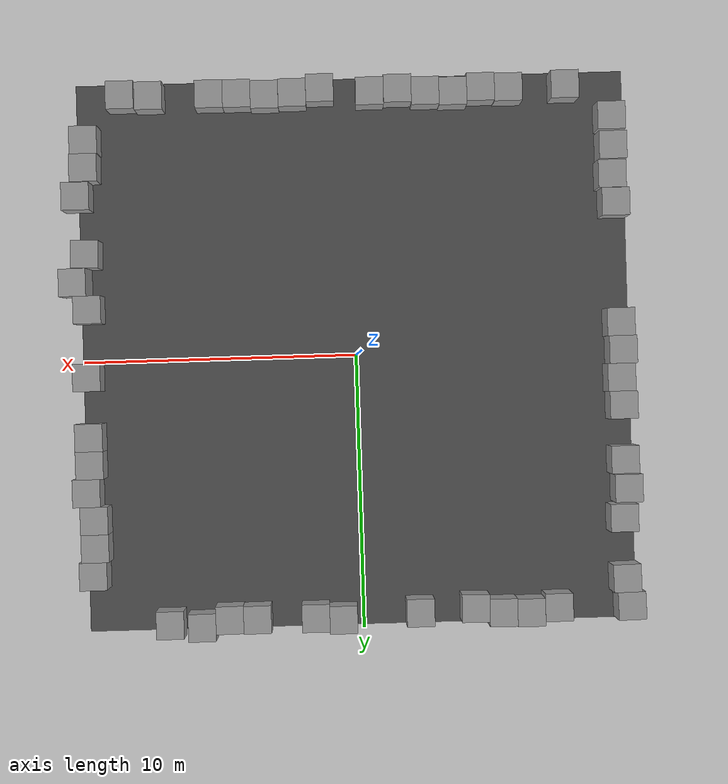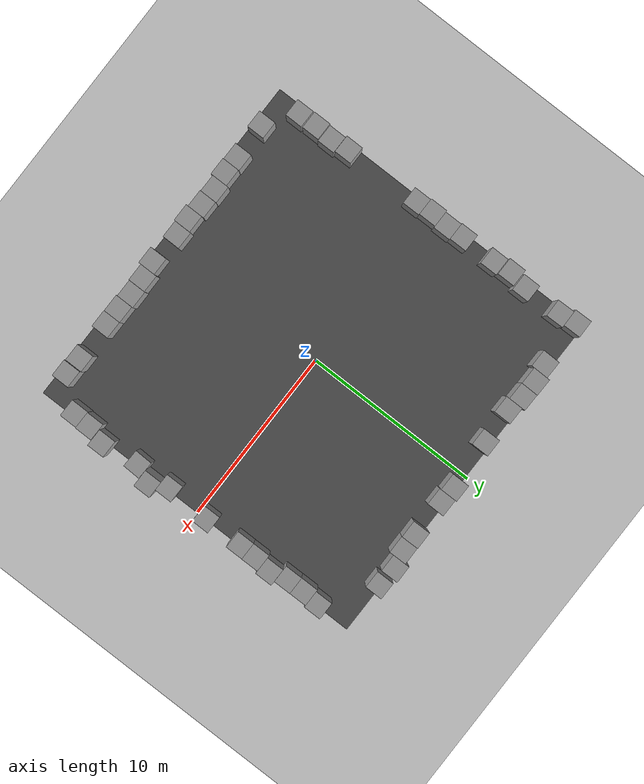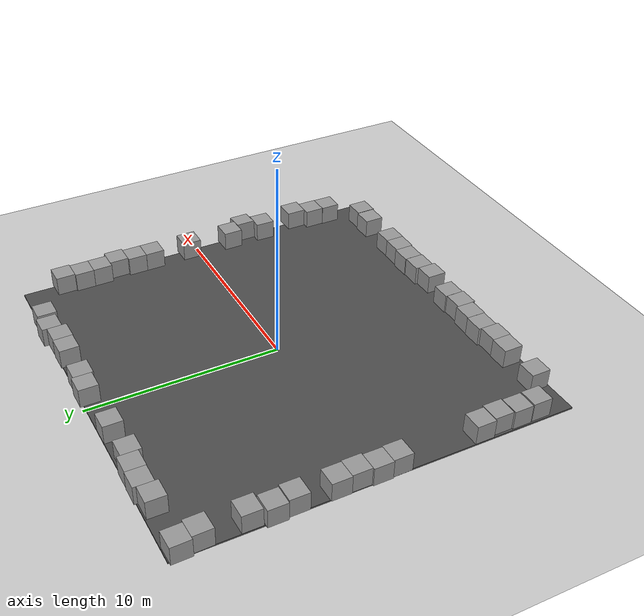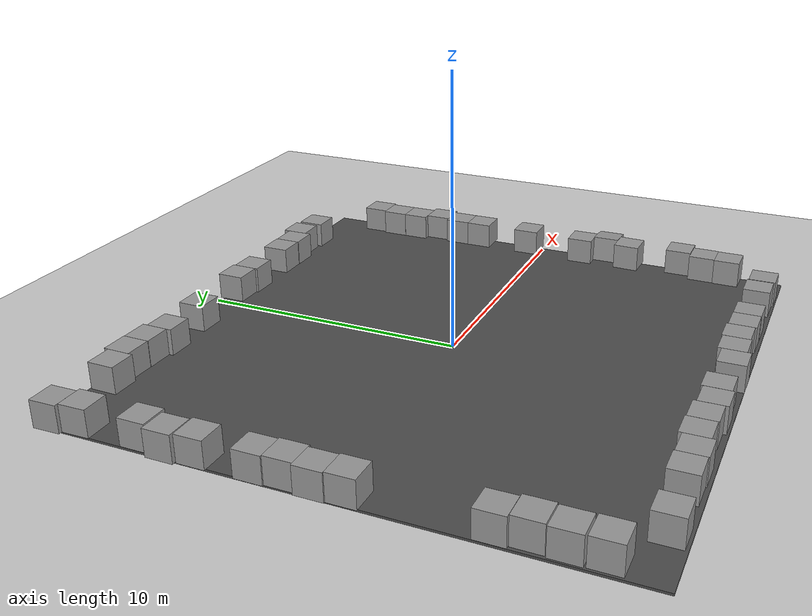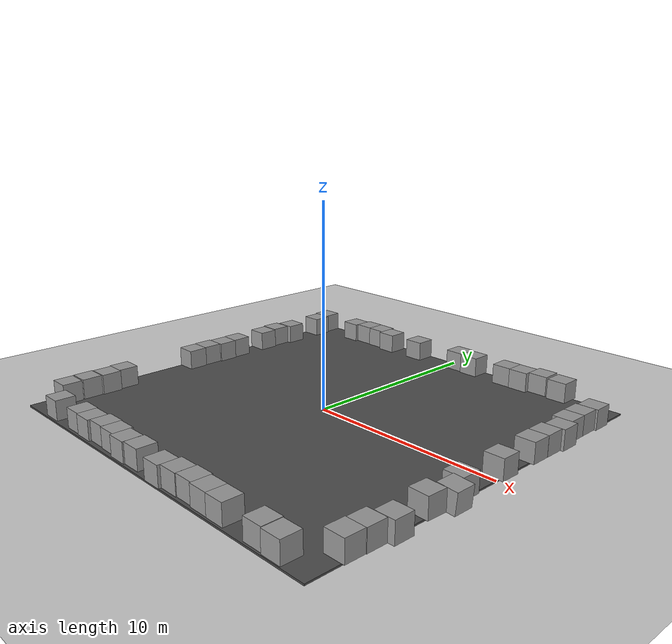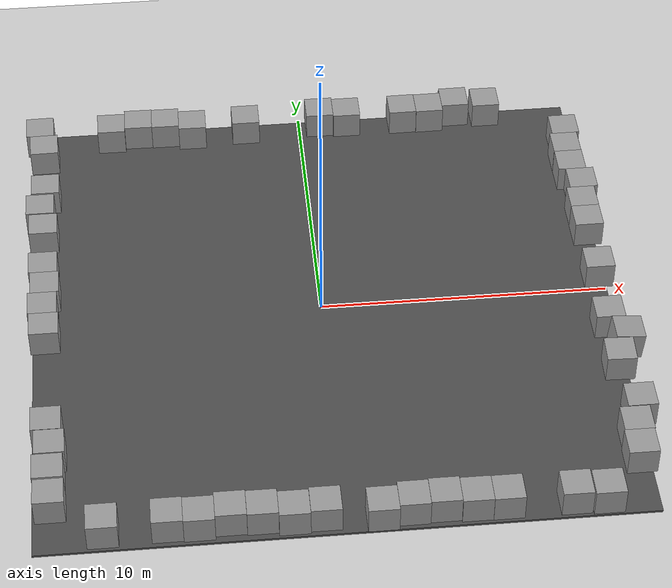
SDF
<sdf version="1.6">
 <world name="default">
  <light name="sun" type="directional">
   <pose>0 0 10 0 -0 0</pose>
   <diffuse>0.8 0.8 0.8 1</diffuse>
   <specular>0.1 0.1 0.1 1</specular>
   <attenuation>
    <range>1000</range>
    <constant>0.9</constant>
    <linear>0.01</linear>
    <quadratic>0.001</quadratic>
   </attenuation>
   <direction>-0.5 0.5 -1</direction>
  </light>
  <model name="ground_plane">
   <static>1</static>
   <link name="link">
    <collision name="collision">
     <geometry><plane><normal>0 0 1</normal><size>100 100</size></plane></geometry>
     <surface><friction><ode><mu>100</mu><mu2>50</mu2></ode></friction></surface>
    </collision>
    <visual name="visual">
     <cast_shadows>0</cast_shadows>
     <geometry><plane><normal>0 0 1</normal><size>100 100</size></plane></geometry>
     <material>
      <script><uri>file://media/materials/scripts/gazebo.material</uri><name>Gazebo/Grey</name></script>
     </material>
    </visual>
   </link>
  </model>
  <gravity>0 0 -9.8</gravity>
  <magnetic_field>6e-06 2.3e-05 -4.2e-05</magnetic_field>
  <atmosphere type="adiabatic"/>
  <physics name="default_physics" default="0" type="ode">
   <max_step_size>0.001</max_step_size>
   <real_time_factor>1</real_time_factor>
   <real_time_update_rate>1000</real_time_update_rate>
  </physics>
  <scene><ambient>0.4 0.4 0.4 1</ambient><background>0.7 0.7 0.7 1</background><shadows>1</shadows></scene>
  <spherical_coordinates>
   <surface_model>EARTH_WGS84</surface_model>
   <latitude_deg>0</latitude_deg>
   <longitude_deg>0</longitude_deg>
   <elevation>0</elevation>
   <heading_deg>0</heading_deg>
  </spherical_coordinates>
  <model name="asphalt_plane">
   <static>1</static>
   <link name="link">
    <collision name="collision"><geometry><box><size>20 20 0.1</size></box></geometry></collision>
    <visual name="visual">
     <cast_shadows>0</cast_shadows>
     <geometry><box><size>20 20 0.1</size></box></geometry>
     <material>
      <script>
       <uri>model://asphalt_plane/materials/scripts</uri>
       <uri>model://asphalt_plane/materials/textures</uri>
       <name>vrc/asphalt</name>
      </script>
     </material>
    </visual>
   </link>
   <pose>0.023839 -0.146036 0 0 -0 0</pose>
  </model>
  <model name="unit_box_0">
   <pose>-9.39336 -8.37789 0.55 0 -0 5e-05</pose>
   <link name="link">
    <inertial>
     <mass>1</mass>
     <inertia>
      <ixx>0.166667</ixx>
      <ixy>0</ixy>
      <ixz>0</ixz>
      <iyy>0.166667</iyy>
      <iyz>0</iyz>
      <izz>0.166667</izz>
     </inertia>
    </inertial>
    <collision name="collision"><geometry><box><size>1 1 1</size></box></geometry></collision>
    <visual name="visual">
     <geometry><box><size>1 1 1</size></box></geometry>
     <material>
      <script><name>Gazebo/Grey</name><uri>file://media/materials/scripts/gazebo.material</uri></script>
     </material>
    </visual>
   </link>
  </model>
  <model name="unit_box_1">
   <pose>-9.41766 -7.3155 0.55 0 -0 5e-05</pose>
   <link name="link">
    <inertial>
     <mass>1</mass>
     <inertia>
      <ixx>0.166667</ixx>
      <ixy>0</ixy>
      <ixz>0</ixz>
      <iyy>0.166667</iyy>
      <iyz>0</iyz>
      <izz>0.166667</izz>
     </inertia>
    </inertial>
    <collision name="collision"><geometry><box><size>1 1 1</size></box></geometry></collision>
    <visual name="visual">
     <geometry><box><size>1 1 1</size></box></geometry>
     <material>
      <script><name>Gazebo/Grey</name><uri>file://media/materials/scripts/gazebo.material</uri></script>
     </material>
    </visual>
   </link>
  </model>
  <model name="unit_box_1_clone">
   <pose>-9.36201 -6.27951 0.549998 -5e-06 0 0.000116</pose>
   <link name="link">
    <inertial>
     <mass>1</mass>
     <inertia>
      <ixx>0.166667</ixx>
      <ixy>0</ixy>
      <ixz>0</ixz>
      <iyy>0.166667</iyy>
      <iyz>0</iyz>
      <izz>0.166667</izz>
     </inertia>
    </inertial>
    <collision name="collision"><geometry><box><size>1 1 1</size></box></geometry></collision>
    <visual name="visual">
     <geometry><box><size>1 1 1</size></box></geometry>
     <material>
      <script><name>Gazebo/Grey</name><uri>file://media/materials/scripts/gazebo.material</uri></script>
     </material>
    </visual>
   </link>
  </model>
  <model name="unit_box_1_clone_peter">
   <pose>-0 0 0.55 -0 -0 -0</pose>
   <link name="link">
    <inertial>
     <mass>1</mass>
     <inertia>
      <ixx>0.166667</ixx>
      <ixy>0</ixy>
      <ixz>0</ixz>
      <iyy>0.166667</iyy>
      <iyz>0</iyz>
      <izz>0.166667</izz>
     </inertia>
    </inertial>
    <collision name="collision"><geometry><box><size>0.1 0.1 1</size></box></geometry></collision>
    <visual name="visual">
     <geometry><box><size>0.1 0.1 1</size></box></geometry>
     <material>
      <script><name>Gazebo/Grey</name><uri>file://media/materials/scripts/gazebo.material</uri></script>
     </material>
    </visual>
   </link>
   <plugin name="push_animate" filename="libanimated_box.so"/>
  </model>
  <model name="unit_box_1_clone_0">
   <pose>-9.46656 -5.26997 0.549998 -5e-06 -0 0.000115</pose>
   <link name="link">
    <inertial>
     <mass>1</mass>
     <inertia>
      <ixx>0.166667</ixx>
      <ixy>0</ixy>
      <ixz>0</ixz>
      <iyy>0.166667</iyy>
      <iyz>0</iyz>
      <izz>0.166667</izz>
     </inertia>
    </inertial>
    <collision name="collision"><geometry><box><size>1 1 1</size></box></geometry></collision>
    <visual name="visual">
     <geometry><box><size>1 1 1</size></box></geometry>
     <material>
      <script><name>Gazebo/Grey</name><uri>file://media/materials/scripts/gazebo.material</uri></script>
     </material>
    </visual>
   </link>
  </model>
  <model name="unit_box_1_clone_7">
   <pose>-0.705032 -9.49283 0.549998 -1e-06 4e-06 -0.003031</pose>
   <link name="link">
    <inertial>
     <mass>1</mass>
     <inertia>
      <ixx>0.166667</ixx>
      <ixy>0</ixy>
      <ixz>0</ixz>
      <iyy>0.166667</iyy>
      <iyz>0</iyz>
      <izz>0.166667</izz>
     </inertia>
    </inertial>
    <collision name="collision"><geometry><box><size>1 1 1</size></box></geometry></collision>
    <visual name="visual">
     <geometry><box><size>1 1 1</size></box></geometry>
     <material>
      <script><name>Gazebo/Grey</name><uri>file://media/materials/scripts/gazebo.material</uri></script>
     </material>
    </visual>
   </link>
  </model>
  <model name="unit_box_1_clone_8">
   <pose>-1.70734 -9.56117 0.549998 -5e-06 0 0.000267</pose>
   <link name="link">
    <inertial>
     <mass>1</mass>
     <inertia>
      <ixx>0.166667</ixx>
      <ixy>0</ixy>
      <ixz>0</ixz>
      <iyy>0.166667</iyy>
      <iyz>0</iyz>
      <izz>0.166667</izz>
     </inertia>
    </inertial>
    <collision name="collision"><geometry><box><size>1 1 1</size></box></geometry></collision>
    <visual name="visual">
     <geometry><box><size>1 1 1</size></box></geometry>
     <material>
      <script><name>Gazebo/Grey</name><uri>file://media/materials/scripts/gazebo.material</uri></script>
     </material>
    </visual>
   </link>
  </model>
  <model name="unit_box_1_clone_9">
   <pose>-2.7076 -9.44656 0.549998 -5e-06 -0 0.000316</pose>
   <link name="link">
    <inertial>
     <mass>1</mass>
     <inertia>
      <ixx>0.166667</ixx>
      <ixy>0</ixy>
      <ixz>0</ixz>
      <iyy>0.166667</iyy>
      <iyz>0</iyz>
      <izz>0.166667</izz>
     </inertia>
    </inertial>
    <collision name="collision"><geometry><box><size>1 1 1</size></box></geometry></collision>
    <visual name="visual">
     <geometry><box><size>1 1 1</size></box></geometry>
     <material>
      <script><name>Gazebo/Grey</name><uri>file://media/materials/scripts/gazebo.material</uri></script>
     </material>
    </visual>
   </link>
  </model>
  <model name="unit_box_1_clone_10">
   <pose>-3.70791 -9.40958 0.549998 -5e-06 -0 0.000256</pose>
   <link name="link">
    <inertial>
     <mass>1</mass>
     <inertia>
      <ixx>0.166667</ixx>
      <ixy>0</ixy>
      <ixz>0</ixz>
      <iyy>0.166667</iyy>
      <iyz>0</iyz>
      <izz>0.166667</izz>
     </inertia>
    </inertial>
    <collision name="collision"><geometry><box><size>1 1 1</size></box></geometry></collision>
    <visual name="visual">
     <geometry><box><size>1 1 1</size></box></geometry>
     <material>
      <script><name>Gazebo/Grey</name><uri>file://media/materials/scripts/gazebo.material</uri></script>
     </material>
    </visual>
   </link>
  </model>
  <model name="unit_box_1_clone_11">
   <pose>-4.70792 -9.53279 0.549996 9e-06 -0 0.000313</pose>
   <link name="link">
    <inertial>
     <mass>1</mass>
     <inertia>
      <ixx>0.166667</ixx>
      <ixy>0</ixy>
      <ixz>0</ixz>
      <iyy>0.166667</iyy>
      <iyz>0</iyz>
      <izz>0.166667</izz>
     </inertia>
    </inertial>
    <collision name="collision"><geometry><box><size>1 1 1</size></box></geometry></collision>
    <visual name="visual">
     <geometry><box><size>1 1 1</size></box></geometry>
     <material>
      <script><name>Gazebo/Grey</name><uri>file://media/materials/scripts/gazebo.material</uri></script>
     </material>
    </visual>
   </link>
  </model>
  <model name="unit_box_1_clone_12">
   <pose>-5.70794 -9.49711 0.549996 9e-06 -0 0.000324</pose>
   <link name="link">
    <inertial>
     <mass>1</mass>
     <inertia>
      <ixx>0.166667</ixx>
      <ixy>0</ixy>
      <ixz>0</ixz>
      <iyy>0.166667</iyy>
      <iyz>0</iyz>
      <izz>0.166667</izz>
     </inertia>
    </inertial>
    <collision name="collision"><geometry><box><size>1 1 1</size></box></geometry></collision>
    <visual name="visual">
     <geometry><box><size>1 1 1</size></box></geometry>
     <material>
      <script><name>Gazebo/Grey</name><uri>file://media/materials/scripts/gazebo.material</uri></script>
     </material>
    </visual>
   </link>
  </model>
  <model name="unit_box_1_clone_13">
   <pose>-7.74686 -9.54879 0.549998 -5e-06 -0 0.000106</pose>
   <link name="link">
    <inertial>
     <mass>1</mass>
     <inertia>
      <ixx>0.166667</ixx>
      <ixy>0</ixy>
      <ixz>0</ixz>
      <iyy>0.166667</iyy>
      <iyz>0</iyz>
      <izz>0.166667</izz>
     </inertia>
    </inertial>
    <collision name="collision"><geometry><box><size>1 1 1</size></box></geometry></collision>
    <visual name="visual">
     <geometry><box><size>1 1 1</size></box></geometry>
     <material>
      <script><name>Gazebo/Grey</name><uri>file://media/materials/scripts/gazebo.material</uri></script>
     </material>
    </visual>
   </link>
  </model>
  <model name="unit_box_1_clone_14">
   <pose>1.09209 -9.65495 0.55 0 -0 0.001261</pose>
   <link name="link">
    <inertial>
     <mass>1</mass>
     <inertia>
      <ixx>0.166667</ixx>
      <ixy>0</ixy>
      <ixz>0</ixz>
      <iyy>0.166667</iyy>
      <iyz>0</iyz>
      <izz>0.166667</izz>
     </inertia>
    </inertial>
    <collision name="collision"><geometry><box><size>1 1 1</size></box></geometry></collision>
    <visual name="visual">
     <geometry><box><size>1 1 1</size></box></geometry>
     <material>
      <script><name>Gazebo/Grey</name><uri>file://media/materials/scripts/gazebo.material</uri></script>
     </material>
    </visual>
   </link>
  </model>
  <model name="unit_box_1_clone_15">
   <pose>2.0921 -9.51203 0.549998 -5e-06 0 0.000968</pose>
   <link name="link">
    <inertial>
     <mass>1</mass>
     <inertia>
      <ixx>0.166667</ixx>
      <ixy>0</ixy>
      <ixz>0</ixz>
      <iyy>0.166667</iyy>
      <iyz>0</iyz>
      <izz>0.166667</izz>
     </inertia>
    </inertial>
    <collision name="collision"><geometry><box><size>1 1 1</size></box></geometry></collision>
    <visual name="visual">
     <geometry><box><size>1 1 1</size></box></geometry>
     <material>
      <script><name>Gazebo/Grey</name><uri>file://media/materials/scripts/gazebo.material</uri></script>
     </material>
    </visual>
   </link>
  </model>
  <model name="unit_box_1_clone_16">
   <pose>3.09304 -9.47288 0.549998 -5e-06 0 -0.000358</pose>
   <link name="link">
    <inertial>
     <mass>1</mass>
     <inertia>
      <ixx>0.166667</ixx>
      <ixy>0</ixy>
      <ixz>0</ixz>
      <iyy>0.166667</iyy>
      <iyz>0</iyz>
      <izz>0.166667</izz>
     </inertia>
    </inertial>
    <collision name="collision"><geometry><box><size>1 1 1</size></box></geometry></collision>
    <visual name="visual">
     <geometry><box><size>1 1 1</size></box></geometry>
     <material>
      <script><name>Gazebo/Grey</name><uri>file://media/materials/scripts/gazebo.material</uri></script>
     </material>
    </visual>
   </link>
  </model>
  <model name="unit_box_1_clone_17">
   <pose>4.09325 -9.53319 0.549998 -5e-06 -0 -0.000727</pose>
   <link name="link">
    <inertial>
     <mass>1</mass>
     <inertia>
      <ixx>0.166667</ixx>
      <ixy>0</ixy>
      <ixz>0</ixz>
      <iyy>0.166667</iyy>
      <iyz>0</iyz>
      <izz>0.166667</izz>
     </inertia>
    </inertial>
    <collision name="collision"><geometry><box><size>1 1 1</size></box></geometry></collision>
    <visual name="visual">
     <geometry><box><size>1 1 1</size></box></geometry>
     <material>
      <script><name>Gazebo/Grey</name><uri>file://media/materials/scripts/gazebo.material</uri></script>
     </material>
    </visual>
   </link>
  </model>
  <model name="unit_box_1_clone_18">
   <pose>5.0933 -9.54517 0.549998 -5e-06 -0 -0.000835</pose>
   <link name="link">
    <inertial>
     <mass>1</mass>
     <inertia>
      <ixx>0.166667</ixx>
      <ixy>0</ixy>
      <ixz>0</ixz>
      <iyy>0.166667</iyy>
      <iyz>0</iyz>
      <izz>0.166667</izz>
     </inertia>
    </inertial>
    <collision name="collision"><geometry><box><size>1 1 1</size></box></geometry></collision>
    <visual name="visual">
     <geometry><box><size>1 1 1</size></box></geometry>
     <material>
      <script><name>Gazebo/Grey</name><uri>file://media/materials/scripts/gazebo.material</uri></script>
     </material>
    </visual>
   </link>
  </model>
  <model name="unit_box_1_clone_19">
   <pose>7.27241 -9.54382 0.549998 -5e-06 -0 0.000102</pose>
   <link name="link">
    <inertial>
     <mass>1</mass>
     <inertia>
      <ixx>0.166667</ixx>
      <ixy>0</ixy>
      <ixz>0</ixz>
      <iyy>0.166667</iyy>
      <iyz>0</iyz>
      <izz>0.166667</izz>
     </inertia>
    </inertial>
    <collision name="collision"><geometry><box><size>1 1 1</size></box></geometry></collision>
    <visual name="visual">
     <geometry><box><size>1 1 1</size></box></geometry>
     <material>
      <script><name>Gazebo/Grey</name><uri>file://media/materials/scripts/gazebo.material</uri></script>
     </material>
    </visual>
   </link>
  </model>
  <model name="unit_box_1_clone_20">
   <pose>8.30472 -9.59827 0.549998 -5e-06 -0 0.000102</pose>
   <link name="link">
    <inertial>
     <mass>1</mass>
     <inertia>
      <ixx>0.166667</ixx>
      <ixy>0</ixy>
      <ixz>0</ixz>
      <iyy>0.166667</iyy>
      <iyz>0</iyz>
      <izz>0.166667</izz>
     </inertia>
    </inertial>
    <collision name="collision"><geometry><box><size>1 1 1</size></box></geometry></collision>
    <visual name="visual">
     <geometry><box><size>1 1 1</size></box></geometry>
     <material>
      <script><name>Gazebo/Grey</name><uri>file://media/materials/scripts/gazebo.material</uri></script>
     </material>
    </visual>
   </link>
  </model>
  <model name="unit_box_1_clone_21">
   <pose>9.659 -8.0213 0.549997 1e-06 -7e-06 -0.004011</pose>
   <link name="link">
    <inertial>
     <mass>1</mass>
     <inertia>
      <ixx>0.166667</ixx>
      <ixy>0</ixy>
      <ixz>0</ixz>
      <iyy>0.166667</iyy>
      <iyz>0</iyz>
      <izz>0.166667</izz>
     </inertia>
    </inertial>
    <collision name="collision"><geometry><box><size>1 1 1</size></box></geometry></collision>
    <visual name="visual">
     <geometry><box><size>1 1 1</size></box></geometry>
     <material>
      <script><name>Gazebo/Grey</name><uri>file://media/materials/scripts/gazebo.material</uri></script>
     </material>
    </visual>
   </link>
  </model>
  <model name="unit_box_1_clone_22">
   <pose>9.69094 -7.02142 0.549997 2e-06 -5e-06 -0.004005</pose>
   <link name="link">
    <inertial>
     <mass>1</mass>
     <inertia>
      <ixx>0.166667</ixx>
      <ixy>0</ixy>
      <ixz>0</ixz>
      <iyy>0.166667</iyy>
      <iyz>0</iyz>
      <izz>0.166667</izz>
     </inertia>
    </inertial>
    <collision name="collision"><geometry><box><size>1 1 1</size></box></geometry></collision>
    <visual name="visual">
     <geometry><box><size>1 1 1</size></box></geometry>
     <material>
      <script><name>Gazebo/Grey</name><uri>file://media/materials/scripts/gazebo.material</uri></script>
     </material>
    </visual>
   </link>
  </model>
  <model name="unit_box_1_clone_23">
   <pose>10 -6 0.549997 5e-06 -0 -1.1e-05</pose>
   <link name="link">
    <inertial>
     <mass>1</mass>
     <inertia>
      <ixx>0.166667</ixx>
      <ixy>0</ixy>
      <ixz>0</ixz>
      <iyy>0.166667</iyy>
      <iyz>0</iyz>
      <izz>0.166667</izz>
     </inertia>
    </inertial>
    <collision name="collision"><geometry><box><size>1 1 1</size></box></geometry></collision>
    <visual name="visual">
     <geometry><box><size>1 1 1</size></box></geometry>
     <material>
      <script><name>Gazebo/Grey</name><uri>file://media/materials/scripts/gazebo.material</uri></script>
     </material>
    </visual>
   </link>
  </model>
  <model name="unit_box_1_clone_24">
   <pose>9.71572 -3.89852 0.550006 -2e-06 -1.4e-05 -0.031684</pose>
   <link name="link">
    <inertial>
     <mass>1</mass>
     <inertia>
      <ixx>0.166667</ixx>
      <ixy>0</ixy>
      <ixz>0</ixz>
      <iyy>0.166667</iyy>
      <iyz>0</iyz>
      <izz>0.166667</izz>
     </inertia>
    </inertial>
    <collision name="collision"><geometry><box><size>1 1 1</size></box></geometry></collision>
    <visual name="visual">
     <geometry><box><size>1 1 1</size></box></geometry>
     <material>
      <script><name>Gazebo/Grey</name><uri>file://media/materials/scripts/gazebo.material</uri></script>
     </material>
    </visual>
   </link>
  </model>
  <model name="unit_box_1_clone_25">
   <pose>10.1517 -2.8933 0.540887 0.000216 0.085288 0.002607</pose>
   <link name="link">
    <inertial>
     <mass>1</mass>
     <inertia>
      <ixx>0.166667</ixx>
      <ixy>0</ixy>
      <ixz>0</ixz>
      <iyy>0.166667</iyy>
      <iyz>0</iyz>
      <izz>0.166667</izz>
     </inertia>
    </inertial>
    <collision name="collision"><geometry><box><size>1 1 1</size></box></geometry></collision>
    <visual name="visual">
     <geometry><box><size>1 1 1</size></box></geometry>
     <material>
      <script><name>Gazebo/Grey</name><uri>file://media/materials/scripts/gazebo.material</uri></script>
     </material>
    </visual>
   </link>
  </model>
  <model name="unit_box_1_clone_26">
   <pose>9.68454 -1.8944 0.550001 -5e-06 3e-06 0.002592</pose>
   <link name="link">
    <inertial>
     <mass>1</mass>
     <inertia>
      <ixx>0.166667</ixx>
      <ixy>0</ixy>
      <ixz>0</ixz>
      <iyy>0.166667</iyy>
      <iyz>0</iyz>
      <izz>0.166667</izz>
     </inertia>
    </inertial>
    <collision name="collision"><geometry><box><size>1 1 1</size></box></geometry></collision>
    <visual name="visual">
     <geometry><box><size>1 1 1</size></box></geometry>
     <material>
      <script><name>Gazebo/Grey</name><uri>file://media/materials/scripts/gazebo.material</uri></script>
     </material>
    </visual>
   </link>
  </model>
  <model name="unit_box_1_clone_27">
   <pose>9.76858 0.548236 0.55 0 -0 3.1e-05</pose>
   <link name="link">
    <inertial>
     <mass>1</mass>
     <inertia>
      <ixx>0.166667</ixx>
      <ixy>0</ixy>
      <ixz>0</ixz>
      <iyy>0.166667</iyy>
      <iyz>0</iyz>
      <izz>0.166667</izz>
     </inertia>
    </inertial>
    <collision name="collision"><geometry><box><size>1 1 1</size></box></geometry></collision>
    <visual name="visual">
     <geometry><box><size>1 1 1</size></box></geometry>
     <material>
      <script><name>Gazebo/Grey</name><uri>file://media/materials/scripts/gazebo.material</uri></script>
     </material>
    </visual>
   </link>
  </model>
  <model name="unit_box_1_clone_28">
   <pose>9.74807 2.72073 0.549996 0 9e-06 0.004062</pose>
   <link name="link">
    <inertial>
     <mass>1</mass>
     <inertia>
      <ixx>0.166667</ixx>
      <ixy>0</ixy>
      <ixz>0</ixz>
      <iyy>0.166667</iyy>
      <iyz>0</iyz>
      <izz>0.166667</izz>
     </inertia>
    </inertial>
    <collision name="collision"><geometry><box><size>1 1 1</size></box></geometry></collision>
    <visual name="visual">
     <geometry><box><size>1 1 1</size></box></geometry>
     <material>
      <script><name>Gazebo/Grey</name><uri>file://media/materials/scripts/gazebo.material</uri></script>
     </material>
    </visual>
   </link>
  </model>
  <model name="unit_box_1_clone_29">
   <pose>9.74825 3.72077 0.55 0 -0 0.004081</pose>
   <link name="link">
    <inertial>
     <mass>1</mass>
     <inertia>
      <ixx>0.166667</ixx>
      <ixy>0</ixy>
      <ixz>0</ixz>
      <iyy>0.166667</iyy>
      <iyz>0</iyz>
      <izz>0.166667</izz>
     </inertia>
    </inertial>
    <collision name="collision"><geometry><box><size>1 1 1</size></box></geometry></collision>
    <visual name="visual">
     <geometry><box><size>1 1 1</size></box></geometry>
     <material>
      <script><name>Gazebo/Grey</name><uri>file://media/materials/scripts/gazebo.material</uri></script>
     </material>
    </visual>
   </link>
  </model>
  <model name="unit_box_1_clone_30">
   <pose>9.88776 4.72137 0.55 0 -0 0.00412</pose>
   <link name="link">
    <inertial>
     <mass>1</mass>
     <inertia>
      <ixx>0.166667</ixx>
      <ixy>0</ixy>
      <ixz>0</ixz>
      <iyy>0.166667</iyy>
      <iyz>0</iyz>
      <izz>0.166667</izz>
     </inertia>
    </inertial>
    <collision name="collision"><geometry><box><size>1 1 1</size></box></geometry></collision>
    <visual name="visual">
     <geometry><box><size>1 1 1</size></box></geometry>
     <material>
      <script><name>Gazebo/Grey</name><uri>file://media/materials/scripts/gazebo.material</uri></script>
     </material>
    </visual>
   </link>
  </model>
  <model name="unit_box_1_clone_31">
   <pose>9.63356 5.72049 0.55 0 -0 0.004246</pose>
   <link name="link">
    <inertial>
     <mass>1</mass>
     <inertia>
      <ixx>0.166667</ixx>
      <ixy>0</ixy>
      <ixz>0</ixz>
      <iyy>0.166667</iyy>
      <iyz>0</iyz>
      <izz>0.166667</izz>
     </inertia>
    </inertial>
    <collision name="collision"><geometry><box><size>1 1 1</size></box></geometry></collision>
    <visual name="visual">
     <geometry><box><size>1 1 1</size></box></geometry>
     <material>
      <script><name>Gazebo/Grey</name><uri>file://media/materials/scripts/gazebo.material</uri></script>
     </material>
    </visual>
   </link>
  </model>
  <model name="unit_box_1_clone_32">
   <pose>9.6246 6.72049 0.55 0 1e-06 0.004234</pose>
   <link name="link">
    <inertial>
     <mass>1</mass>
     <inertia>
      <ixx>0.166667</ixx>
      <ixy>0</ixy>
      <ixz>0</ixz>
      <iyy>0.166667</iyy>
      <iyz>0</iyz>
      <izz>0.166667</izz>
     </inertia>
    </inertial>
    <collision name="collision"><geometry><box><size>1 1 1</size></box></geometry></collision>
    <visual name="visual">
     <geometry><box><size>1 1 1</size></box></geometry>
     <material>
      <script><name>Gazebo/Grey</name><uri>file://media/materials/scripts/gazebo.material</uri></script>
     </material>
    </visual>
   </link>
  </model>
  <model name="unit_box_1_clone_33">
   <pose>9.7178 7.72091 0.549996 -0 8e-06 0.004273</pose>
   <link name="link">
    <inertial>
     <mass>1</mass>
     <inertia>
      <ixx>0.166667</ixx>
      <ixy>0</ixy>
      <ixz>0</ixz>
      <iyy>0.166667</iyy>
      <iyz>0</iyz>
      <izz>0.166667</izz>
     </inertia>
    </inertial>
    <collision name="collision"><geometry><box><size>1 1 1</size></box></geometry></collision>
    <visual name="visual">
     <geometry><box><size>1 1 1</size></box></geometry>
     <material>
      <script><name>Gazebo/Grey</name><uri>file://media/materials/scripts/gazebo.material</uri></script>
     </material>
    </visual>
   </link>
  </model>
  <model name="unit_box_1_clone_34">
   <pose>6.9999 9.55275 0.549999 3e-06 -1e-06 0.000433</pose>
   <link name="link">
    <inertial>
     <mass>1</mass>
     <inertia>
      <ixx>0.166667</ixx>
      <ixy>0</ixy>
      <ixz>0</ixz>
      <iyy>0.166667</iyy>
      <iyz>0</iyz>
      <izz>0.166667</izz>
     </inertia>
    </inertial>
    <collision name="collision"><geometry><box><size>1 1 1</size></box></geometry></collision>
    <visual name="visual">
     <geometry><box><size>1 1 1</size></box></geometry>
     <material>
      <script><name>Gazebo/Grey</name><uri>file://media/materials/scripts/gazebo.material</uri></script>
     </material>
    </visual>
   </link>
  </model>
  <model name="unit_box_1_clone_35">
   <pose>5.84882 9.67064 0.550001 5e-06 3e-06 0.011376</pose>
   <link name="link">
    <inertial>
     <mass>1</mass>
     <inertia>
      <ixx>0.166667</ixx>
      <ixy>0</ixy>
      <ixz>0</ixz>
      <iyy>0.166667</iyy>
      <iyz>0</iyz>
      <izz>0.166667</izz>
     </inertia>
    </inertial>
    <collision name="collision"><geometry><box><size>1 1 1</size></box></geometry></collision>
    <visual name="visual">
     <geometry><box><size>1 1 1</size></box></geometry>
     <material>
      <script><name>Gazebo/Grey</name><uri>file://media/materials/scripts/gazebo.material</uri></script>
     </material>
    </visual>
   </link>
  </model>
  <model name="unit_box_1_clone_36">
   <pose>4.85158 9.42256 0.55 0 -0 0.011376</pose>
   <link name="link">
    <inertial>
     <mass>1</mass>
     <inertia>
      <ixx>0.166667</ixx>
      <ixy>0</ixy>
      <ixz>0</ixz>
      <iyy>0.166667</iyy>
      <iyz>0</iyz>
      <izz>0.166667</izz>
     </inertia>
    </inertial>
    <collision name="collision"><geometry><box><size>1 1 1</size></box></geometry></collision>
    <visual name="visual">
     <geometry><box><size>1 1 1</size></box></geometry>
     <material>
      <script><name>Gazebo/Grey</name><uri>file://media/materials/scripts/gazebo.material</uri></script>
     </material>
    </visual>
   </link>
  </model>
  <model name="unit_box_1_clone_37">
   <pose>3.85138 9.43384 0.549986 -2e-06 7e-06 0.011376</pose>
   <link name="link">
    <inertial>
     <mass>1</mass>
     <inertia>
      <ixx>0.166667</ixx>
      <ixy>0</ixy>
      <ixz>0</ixz>
      <iyy>0.166667</iyy>
      <iyz>0</iyz>
      <izz>0.166667</izz>
     </inertia>
    </inertial>
    <collision name="collision"><geometry><box><size>1 1 1</size></box></geometry></collision>
    <visual name="visual">
     <geometry><box><size>1 1 1</size></box></geometry>
     <material>
      <script><name>Gazebo/Grey</name><uri>file://media/materials/scripts/gazebo.material</uri></script>
     </material>
    </visual>
   </link>
  </model>
  <model name="unit_box_1_clone_38">
   <pose>1.74508 9.44143 0.550002 0 5e-06 -0.000695</pose>
   <link name="link">
    <inertial>
     <mass>1</mass>
     <inertia>
      <ixx>0.166667</ixx>
      <ixy>0</ixy>
      <ixz>0</ixz>
      <iyy>0.166667</iyy>
      <iyz>0</iyz>
      <izz>0.166667</izz>
     </inertia>
    </inertial>
    <collision name="collision"><geometry><box><size>1 1 1</size></box></geometry></collision>
    <visual name="visual">
     <geometry><box><size>1 1 1</size></box></geometry>
     <material>
      <script><name>Gazebo/Grey</name><uri>file://media/materials/scripts/gazebo.material</uri></script>
     </material>
    </visual>
   </link>
  </model>
  <model name="unit_box_1_clone_39">
   <pose>0.745129 9.52567 0.549997 -1e-06 -7e-06 -0.000696</pose>
   <link name="link">
    <inertial>
     <mass>1</mass>
     <inertia>
      <ixx>0.166667</ixx>
      <ixy>0</ixy>
      <ixz>0</ixz>
      <iyy>0.166667</iyy>
      <iyz>0</iyz>
      <izz>0.166667</izz>
     </inertia>
    </inertial>
    <collision name="collision"><geometry><box><size>1 1 1</size></box></geometry></collision>
    <visual name="visual">
     <geometry><box><size>1 1 1</size></box></geometry>
     <material>
      <script><name>Gazebo/Grey</name><uri>file://media/materials/scripts/gazebo.material</uri></script>
     </material>
    </visual>
   </link>
  </model>
  <model name="unit_box_1_clone_40">
   <pose>-2.03631 9.35147 0.549998 -5e-06 -0 8.9e-05</pose>
   <link name="link">
    <inertial>
     <mass>1</mass>
     <inertia>
      <ixx>0.166667</ixx>
      <ixy>0</ixy>
      <ixz>0</ixz>
      <iyy>0.166667</iyy>
      <iyz>0</iyz>
      <izz>0.166667</izz>
     </inertia>
    </inertial>
    <collision name="collision"><geometry><box><size>1 1 1</size></box></geometry></collision>
    <visual name="visual">
     <geometry><box><size>1 1 1</size></box></geometry>
     <material>
      <script><name>Gazebo/Grey</name><uri>file://media/materials/scripts/gazebo.material</uri></script>
     </material>
    </visual>
   </link>
  </model>
  <model name="unit_box_1_clone_41">
   <pose>-4.02686 9.24341 0.549995 -0 1e-05 -0.009799</pose>
   <link name="link">
    <inertial>
     <mass>1</mass>
     <inertia>
      <ixx>0.166667</ixx>
      <ixy>0</ixy>
      <ixz>0</ixz>
      <iyy>0.166667</iyy>
      <iyz>0</iyz>
      <izz>0.166667</izz>
     </inertia>
    </inertial>
    <collision name="collision"><geometry><box><size>1 1 1</size></box></geometry></collision>
    <visual name="visual">
     <geometry><box><size>1 1 1</size></box></geometry>
     <material>
      <script><name>Gazebo/Grey</name><uri>file://media/materials/scripts/gazebo.material</uri></script>
     </material>
    </visual>
   </link>
  </model>
  <model name="unit_box_1_clone_42">
   <pose>-5.02535 9.42292 0.549999 0 -3e-06 -0.009843</pose>
   <link name="link">
    <inertial>
     <mass>1</mass>
     <inertia>
      <ixx>0.166667</ixx>
      <ixy>0</ixy>
      <ixz>0</ixz>
      <iyy>0.166667</iyy>
      <iyz>0</iyz>
      <izz>0.166667</izz>
     </inertia>
    </inertial>
    <collision name="collision"><geometry><box><size>1 1 1</size></box></geometry></collision>
    <visual name="visual">
     <geometry><box><size>1 1 1</size></box></geometry>
     <material>
      <script><name>Gazebo/Grey</name><uri>file://media/materials/scripts/gazebo.material</uri></script>
     </material>
    </visual>
   </link>
  </model>
  <model name="unit_box_1_clone_43">
   <pose>-6.02526 9.44735 0.549995 -9e-06 -2e-06 -0.009944</pose>
   <link name="link">
    <inertial>
     <mass>1</mass>
     <inertia>
      <ixx>0.166667</ixx>
      <ixy>0</ixy>
      <ixz>0</ixz>
      <iyy>0.166667</iyy>
      <iyz>0</iyz>
      <izz>0.166667</izz>
     </inertia>
    </inertial>
    <collision name="collision"><geometry><box><size>1 1 1</size></box></geometry></collision>
    <visual name="visual">
     <geometry><box><size>1 1 1</size></box></geometry>
     <material>
      <script><name>Gazebo/Grey</name><uri>file://media/materials/scripts/gazebo.material</uri></script>
     </material>
    </visual>
   </link>
  </model>
  <model name="unit_box_1_clone_44">
   <pose>-7.02698 9.29032 0.549999 -2e-06 -0 -0.010035</pose>
   <link name="link">
    <inertial>
     <mass>1</mass>
     <inertia>
      <ixx>0.166667</ixx>
      <ixy>0</ixy>
      <ixz>0</ixz>
      <iyy>0.166667</iyy>
      <iyz>0</iyz>
      <izz>0.166667</izz>
     </inertia>
    </inertial>
    <collision name="collision"><geometry><box><size>1 1 1</size></box></geometry></collision>
    <visual name="visual">
     <geometry><box><size>1 1 1</size></box></geometry>
     <material>
      <script><name>Gazebo/Grey</name><uri>file://media/materials/scripts/gazebo.material</uri></script>
     </material>
    </visual>
   </link>
  </model>
  <model name="unit_box_1_clone_45">
   <pose>-9.65359 9.30939 0.55 0 -0 0.016596</pose>
   <link name="link">
    <inertial>
     <mass>1</mass>
     <inertia>
      <ixx>0.166667</ixx>
      <ixy>0</ixy>
      <ixz>0</ixz>
      <iyy>0.166667</iyy>
      <iyz>0</iyz>
      <izz>0.166667</izz>
     </inertia>
    </inertial>
    <collision name="collision"><geometry><box><size>1 1 1</size></box></geometry></collision>
    <visual name="visual">
     <geometry><box><size>1 1 1</size></box></geometry>
     <material>
      <script><name>Gazebo/Grey</name><uri>file://media/materials/scripts/gazebo.material</uri></script>
     </material>
    </visual>
   </link>
  </model>
  <model name="unit_box_1_clone_46">
   <pose>-9.50816 8.31161 0.549976 0 1e-05 0.016746</pose>
   <link name="link">
    <inertial>
     <mass>1</mass>
     <inertia>
      <ixx>0.166667</ixx>
      <ixy>0</ixy>
      <ixz>0</ixz>
      <iyy>0.166667</iyy>
      <iyz>0</iyz>
      <izz>0.166667</izz>
     </inertia>
    </inertial>
    <collision name="collision"><geometry><box><size>1 1 1</size></box></geometry></collision>
    <visual name="visual">
     <geometry><box><size>1 1 1</size></box></geometry>
     <material>
      <script><name>Gazebo/Grey</name><uri>file://media/materials/scripts/gazebo.material</uri></script>
     </material>
    </visual>
   </link>
  </model>
  <model name="unit_box_1_clone_47">
   <pose>-9.46723 6.13599 0.549998 -5e-06 -0 8.4e-05</pose>
   <link name="link">
    <inertial>
     <mass>1</mass>
     <inertia>
      <ixx>0.166667</ixx>
      <ixy>0</ixy>
      <ixz>0</ixz>
      <iyy>0.166667</iyy>
      <iyz>0</iyz>
      <izz>0.166667</izz>
     </inertia>
    </inertial>
    <collision name="collision"><geometry><box><size>1 1 1</size></box></geometry></collision>
    <visual name="visual">
     <geometry><box><size>1 1 1</size></box></geometry>
     <material>
      <script><name>Gazebo/Grey</name><uri>file://media/materials/scripts/gazebo.material</uri></script>
     </material>
    </visual>
   </link>
  </model>
  <model name="unit_box_1_clone_48">
   <pose>-9.65559 5.07227 0.55 0 -0 3e-05</pose>
   <link name="link">
    <inertial>
     <mass>1</mass>
     <inertia>
      <ixx>0.166667</ixx>
      <ixy>0</ixy>
      <ixz>0</ixz>
      <iyy>0.166667</iyy>
      <iyz>0</iyz>
      <izz>0.166667</izz>
     </inertia>
    </inertial>
    <collision name="collision"><geometry><box><size>1 1 1</size></box></geometry></collision>
    <visual name="visual">
     <geometry><box><size>1 1 1</size></box></geometry>
     <material>
      <script><name>Gazebo/Grey</name><uri>file://media/materials/scripts/gazebo.material</uri></script>
     </material>
    </visual>
   </link>
  </model>
  <model name="unit_box_1_clone_49">
   <pose>-9.55136 4.03456 0.549998 1e-06 -4e-06 6.2e-05</pose>
   <link name="link">
    <inertial>
     <mass>1</mass>
     <inertia>
      <ixx>0.166667</ixx>
      <ixy>0</ixy>
      <ixz>0</ixz>
      <iyy>0.166667</iyy>
      <iyz>0</iyz>
      <izz>0.166667</izz>
     </inertia>
    </inertial>
    <collision name="collision"><geometry><box><size>1 1 1</size></box></geometry></collision>
    <visual name="visual">
     <geometry><box><size>1 1 1</size></box></geometry>
     <material>
      <script><name>Gazebo/Grey</name><uri>file://media/materials/scripts/gazebo.material</uri></script>
     </material>
    </visual>
   </link>
  </model>
  <model name="unit_box_1_clone_50">
   <pose>-9.55708 2.06438 0.55 -3e-06 -3e-06 0.002225</pose>
   <link name="link">
    <inertial>
     <mass>1</mass>
     <inertia>
      <ixx>0.166667</ixx>
      <ixy>0</ixy>
      <ixz>0</ixz>
      <iyy>0.166667</iyy>
      <iyz>0</iyz>
      <izz>0.166667</izz>
     </inertia>
    </inertial>
    <collision name="collision"><geometry><box><size>1 1 1</size></box></geometry></collision>
    <visual name="visual">
     <geometry><box><size>1 1 1</size></box></geometry>
     <material>
      <script><name>Gazebo/Grey</name><uri>file://media/materials/scripts/gazebo.material</uri></script>
     </material>
    </visual>
   </link>
  </model>
  <model name="unit_box_1_clone_51">
   <pose>-9.50402 1.06442 0.549995 -0 -1e-05 0.002389</pose>
   <link name="link">
    <inertial>
     <mass>1</mass>
     <inertia>
      <ixx>0.166667</ixx>
      <ixy>0</ixy>
      <ixz>0</ixz>
      <iyy>0.166667</iyy>
      <iyz>0</iyz>
      <izz>0.166667</izz>
     </inertia>
    </inertial>
    <collision name="collision"><geometry><box><size>1 1 1</size></box></geometry></collision>
    <visual name="visual">
     <geometry><box><size>1 1 1</size></box></geometry>
     <material>
      <script><name>Gazebo/Grey</name><uri>file://media/materials/scripts/gazebo.material</uri></script>
     </material>
    </visual>
   </link>
  </model>
  <model name="unit_box_1_clone_52">
   <pose>-9.58874 0.064128 0.549988 4e-06 1e-06 0.002539</pose>
   <link name="link">
    <inertial>
     <mass>1</mass>
     <inertia>
      <ixx>0.166667</ixx>
      <ixy>0</ixy>
      <ixz>0</ixz>
      <iyy>0.166667</iyy>
      <iyz>0</iyz>
      <izz>0.166667</izz>
     </inertia>
    </inertial>
    <collision name="collision"><geometry><box><size>1 1 1</size></box></geometry></collision>
    <visual name="visual">
     <geometry><box><size>1 1 1</size></box></geometry>
     <material>
      <script><name>Gazebo/Grey</name><uri>file://media/materials/scripts/gazebo.material</uri></script>
     </material>
    </visual>
   </link>
  </model>
  <model name="unit_box_1_clone_53">
   <pose>-9.53463 -0.935746 0.550001 -2e-06 0 0.002542</pose>
   <link name="link">
    <inertial>
     <mass>1</mass>
     <inertia>
      <ixx>0.166667</ixx>
      <ixy>0</ixy>
      <ixz>0</ixz>
      <iyy>0.166667</iyy>
      <iyz>0</iyz>
      <izz>0.166667</izz>
     </inertia>
    </inertial>
    <collision name="collision"><geometry><box><size>1 1 1</size></box></geometry></collision>
    <visual name="visual">
     <geometry><box><size>1 1 1</size></box></geometry>
     <material>
      <script><name>Gazebo/Grey</name><uri>file://media/materials/scripts/gazebo.material</uri></script>
     </material>
    </visual>
   </link>
  </model>
 </world>
</sdf>
